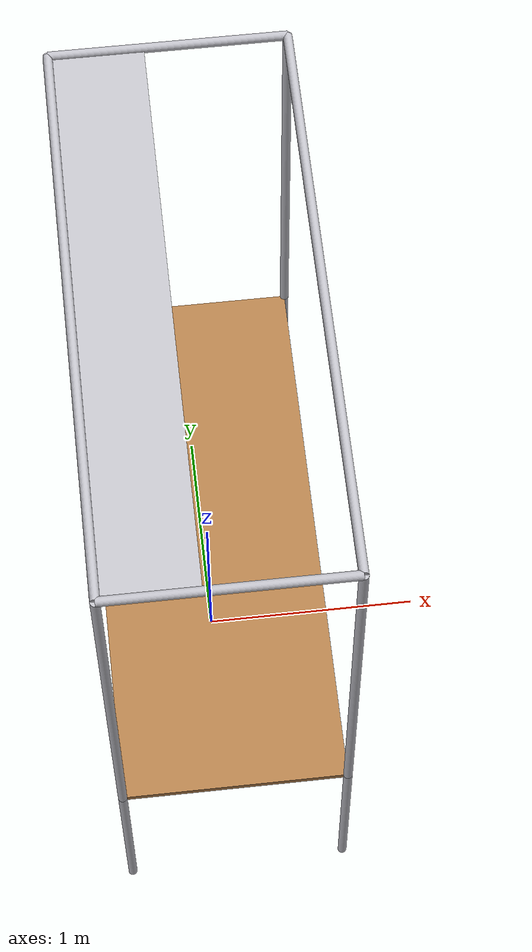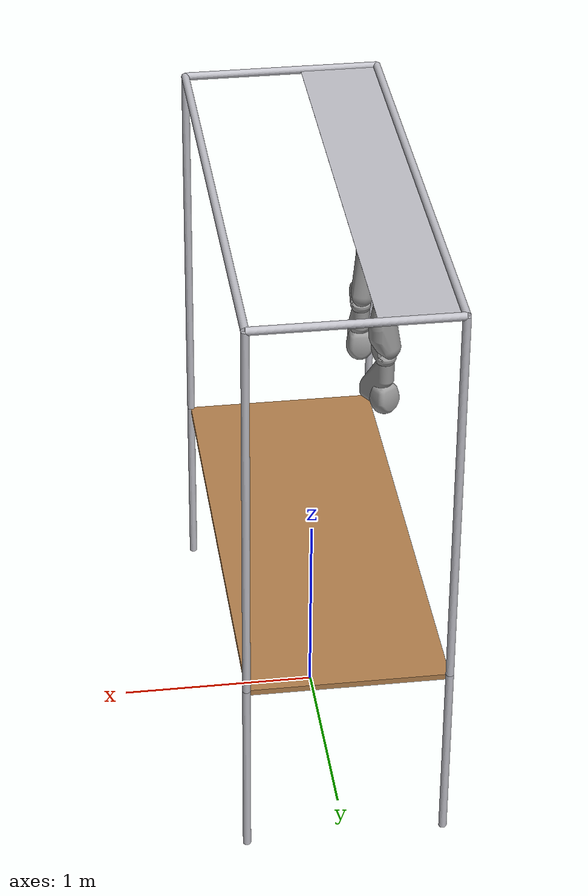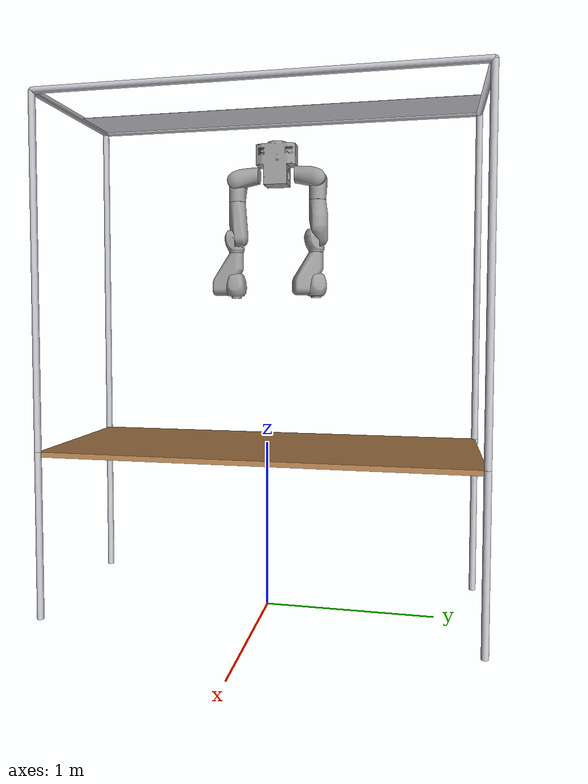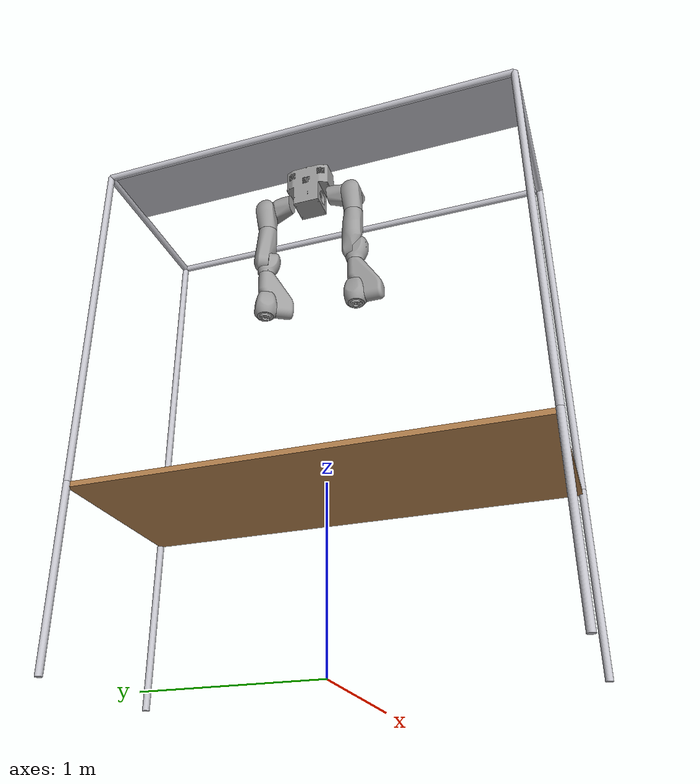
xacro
<?xml version="1.0"?>
<robot xmlns:xacro="http://ros.org/wiki/xacro" name="repair_full">

    <xacro:include filename="$(find repair_urdf)/urdf/conversions.urdf.xacro" />
    <xacro:include filename="$(find repair_urdf)/urdf/materials.urdf.xacro" />

    <xacro:include filename="$(find repair_urdf)/urdf/repair_arm_macro.urdf.xacro" />
    <xacro:include filename="$(find repair_urdf)/urdf/repair_torso_macro.urdf.xacro"/>
    <xacro:include filename="$(find repair_urdf)/urdf/repair_cage_macro.urdf.xacro"/>

    <xacro:include filename="$(find repair_urdf)/urdf/kinematics_properties.urdf.xacro" />
    <xacro:include filename="$(find repair_urdf)/urdf/inertial_properties.urdf.xacro" />
    <xacro:include filename="$(find repair_urdf)/urdf/limits.urdf.xacro" />

    <xacro:include filename="$(find repair_urdf)/urdf/gazebo/xbot.gazebo.xacro" />

    <link name="world"/>

    <xacro:repair_cage parent="world">
    </xacro:repair_cage>

    <xacro:repair_torso parent="sliding_guide_link">
    <origin xyz="${Torso_Ox} ${Torso_Oy} ${Torso_Oz}"
            rpy="${Torso_roll} ${Torso_pitch} ${Torso_yaw}" />
    </xacro:repair_torso>

    <xacro:repair_arm id="2"  rot="1"  parent="torso_1">
      <origin xyz="${Shoulder_1_Ox} ${Shoulder_1_Oy} ${Shoulder_1_Oz}"
              rpy="${Shoulder_1_roll} ${Shoulder_1_pitch} ${Shoulder_1_yaw}" />
    </xacro:repair_arm>

    <xacro:repair_arm id="1"  rot="-1"  parent="torso_1">
        <origin xyz="${Shoulder_1_Ox} ${-Shoulder_1_Oy} ${Shoulder_1_Oz}"
                rpy="${-Shoulder_1_roll} ${Shoulder_1_pitch} ${Shoulder_1_yaw}" />
      </xacro:repair_arm>

</robot>

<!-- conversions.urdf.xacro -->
<robot xmlns:xacro="http://ros.org/wiki/xacro">

<xacro:property name="mmTom" value="0.001" />
<xacro:property name="mm2Tom2" value="${0.001*0.001}" />
<xacro:property name="tonsToKg" value="1000.0" />

<xacro:property name="PI" value="3.14159265359" />
<xacro:property name="PI_2" value="1.57079632679" />

<xacro:property name="toRad" value="${PI/180.0}" />
<xacro:property name="toDeg" value="${180.0/PI}" />

</robot>

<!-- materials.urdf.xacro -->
<robot xmlns:xacro="http://ros.org/wiki/xacro">

<material name="grey">
  <color rgba="0.5 0.5 0.5 1"/>
</material>

<material name="dark_grey">
  <color rgba="0.3 0.3 0.3 1"/>
</material>

<material name="red">
  <color rgba="1.0 0.0 0.0 1"/>
</material>

<material name="green">
  <color rgba="0.0 1.0 0.0 1"/>
</material>

<material name="blue">
  <color rgba="0.13333333333333333 0.25882352941176473 0.7803921568627451 1.0" />
</material>

<material name="darkblue">
    <color rgba="0.0 0.3 0.9 1"/>
</material>

<material name="darkred">
    <color rgba="0.55 0.0 0.0 1"/>
</material>

<material name="dark">
    <color rgba="0.6 0.6 0.6 1"/>
</material>

</robot>

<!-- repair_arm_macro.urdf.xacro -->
<robot xmlns:xacro="http://ros.org/wiki/xacro">

<!-- macro for generating the urdf associated with a single arm of the RePair platform -->
<!-- id: specifies the id of the arm (e.g. 0 for left arm and 1 for right) -->
<!-- base_link: name of base link a the single arm -->
<!-- is_sliding_wrist: whether to add a sliding joint along the wrist second d.o.f.
    (true -> yes), everything else -> no. This is used to generate the URDF for the optimization.  -->
<!-- gen_coll: whether to add the approximate collision  model of the platform -->
<!-- use_updated_wrist: visual parameter. if true, we load the latest meshes (which are adapted to the
results of the optimization), otherwise we go with the old ones (generated for a spherical wrist) -->

    <xacro:macro name="repair_arm" params="id rot parent *origin">

        <xacro:property name="limit_index" value="0" />

        <xacro:if value="${rot == -1}">
            <xacro:property name="limit_index" value="1" />
        </xacro:if>

        <link name="arm_${id}_1">
            <inertial>
                <origin xyz="${Shoulder_1_x} ${rot*Shoulder_1_y} ${Shoulder_1_z}" />
                <mass value="${Shoulder_1_mass}" />
                <inertia ixx="${Shoulder_1_xx}" ixy="${rot*Shoulder_1_xy}" ixz="${Shoulder_1_xz}"
                    iyy="${Shoulder_1_yy}" iyz="${rot*Shoulder_1_yz}" izz="${Shoulder_1_zz}" />
                </inertial>

            <visual>
                <geometry>
                    <mesh filename="package://repair_urdf/meshes/mesh_sh-pitch.stl" scale="0.001 ${rot*0.001} 0.001"/>
                </geometry>
                <material name="dark"/>
            </visual>

            <collision>
                <geometry>
                    <mesh filename="package://repair_urdf/meshes/simplified/mesh_sh-pitch.stl" scale="0.001 ${rot*0.001} 0.001"/>
                </geometry>
            </collision>
        </link>

        <link name="arm_${id}_2">
            <inertial>
                <origin xyz="${Shoulder_2_x} ${rot*Shoulder_2_y} ${Shoulder_2_z}" />
                <mass value="${Shoulder_2_mass}" />
                <inertia ixx="${Shoulder_2_xx}" ixy="${rot*Shoulder_2_xy}" ixz="${Shoulder_2_xz}"
                    iyy="${Shoulder_2_yy}" iyz="${rot*Shoulder_2_yz}" izz="${Shoulder_2_zz}" />
                </inertial>

            <visual>
                <geometry>
                    <mesh filename="package://repair_urdf/meshes/mesh_sh-roll.stl" scale="0.001 ${rot*0.001} 0.001"/>
                </geometry>
                <material name="dark"/>
            </visual>

            <collision>
                <geometry>
                    <mesh filename="package://repair_urdf/meshes/simplified/mesh_sh-roll.stl" scale="0.001 ${rot*0.001} 0.001"/>
                </geometry>
            </collision>
        </link>

        <link name="arm_${id}_3">
            <inertial>
                <origin xyz="${Shoulder_3_x} ${rot*Shoulder_3_y} ${Shoulder_3_z}" />
                <mass value="${Shoulder_3_mass}" />
                <inertia ixx="${Shoulder_3_xx}" ixy="${rot*Shoulder_3_xy}" ixz="${Shoulder_3_xz}"
                    iyy="${Shoulder_3_yy}" iyz="${rot*Shoulder_3_yz}" izz="${Shoulder_3_zz}" />
                </inertial>

            <visual>
                <geometry>
                    <mesh filename="package://repair_urdf/meshes/mesh_sh-yaw.stl" scale="0.001 ${rot*0.001} 0.001"/>
                </geometry>
                <material name="dark"/>
            </visual>

            <collision>
                <geometry>
                    <mesh filename="package://repair_urdf/meshes/simplified/mesh_sh-yaw.stl" scale="0.001 ${rot*0.001} 0.001"/>
                </geometry>
            </collision>
        </link>

        <link name="arm_${id}_4">
            <inertial>
                <origin xyz="${Elbow_x} ${rot*Elbow_y} ${Elbow_z}" />
                <mass value="${Elbow_mass}" />
                <inertia ixx="${Elbow_xx}" ixy="${rot*Elbow_xy}" ixz="${Elbow_xz}"
                    iyy="${Elbow_yy}" iyz="${rot*Elbow_yz}" izz="${Elbow_zz}" />
                </inertial>

            <visual>
                <geometry>
                    <mesh filename="package://repair_urdf/meshes/mesh_elbow.stl" scale="0.001 ${rot*0.001} 0.001"/>
                </geometry>
                <material name="dark"/>
            </visual>

            <collision>
                <geometry>
                    <mesh filename="package://repair_urdf/meshes/simplified/mesh_elbow.stl" scale="0.001 ${rot*0.001} 0.001"/>
                </geometry>
            </collision>
        </link>

        <link name="arm_${id}_5">
            <inertial>
                <origin xyz="${Forearm_x} ${rot*Forearm_y} ${Forearm_z}" />
                <mass value="${Forearm_mass}" />
                <inertia ixx="${Forearm_xx}" ixy="${rot*Forearm_xy}" ixz="${Forearm_xz}"
                    iyy="${Forearm_yy}" iyz="${rot*Forearm_yz}" izz="${Forearm_zz}" />
                </inertial>

            <visual>
                <geometry>
                    <mesh filename="package://repair_urdf/meshes/mesh_forearm-yaw.stl" scale="0.001 ${rot*0.001} 0.001"/>
                </geometry>
                <material name="dark"/>
            </visual>

            <collision>
                <geometry>
                    <mesh filename="package://repair_urdf/meshes/simplified/mesh_forearm-yaw.stl" scale="0.001 ${rot*0.001} 0.001"/>
                </geometry>
            </collision>
        </link>

        <link name="arm_${id}_6">
            <inertial>
                <origin xyz="${Wrist_1_x} ${rot*Wrist_1_y} ${Wrist_1_z}" />
                <mass value="${Wrist_1_mass}" />
                <inertia ixx="${Wrist_1_xx}" ixy="${rot*Wrist_1_xy}" ixz="${Wrist_1_xz}"
                    iyy="${Wrist_1_yy}" iyz="${rot*Wrist_1_yz}" izz="${Wrist_1_zz}" />
                </inertial>

            <visual>
                <geometry>
                    <mesh filename="package://repair_urdf/meshes/mesh_wrist-pitch.stl" scale="0.001 ${rot*0.001} 0.001"/>
                </geometry>
                <material name="dark"/>
            </visual>

            <collision>
                <geometry>
                    <mesh filename="package://repair_urdf/meshes/simplified/mesh_wrist-pitch.stl" scale="0.001 ${rot*0.001} 0.001"/>
                </geometry>
            </collision>
        </link>

        <link name="arm_${id}_7">
            <inertial>
                <origin xyz="${Wrist_2_x} ${rot*Wrist_2_y} ${Wrist_2_z}" />
                <mass value="${Wrist_2_mass}" />
                <inertia ixx="${Wrist_2_xx}" ixy="${rot*Wrist_2_xy}" ixz="${Wrist_2_xz}"
                    iyy="${Wrist_2_yy}" iyz="${rot*Wrist_2_yz}" izz="${Wrist_2_zz}" />
            </inertial>

            <visual>
                <geometry>
                    <mesh filename="package://repair_urdf/meshes/mesh_wrist-roll.stl" scale="0.001 ${rot*0.001} 0.001"/>
                </geometry>
                <material name="dark"/>
            </visual>

            <collision>
                <geometry>
                    <mesh filename="package://repair_urdf/meshes/simplified/mesh_wrist-roll.stl" scale="0.001 ${rot*0.001} 0.001"/>
                </geometry>
            </collision>
        </link>

        <link name="arm_${id}_tcp">
            <inertial>
                <origin xyz="0.0 0.05 0.1" />
                <mass value="0.5" />
                <inertia ixx="0.001" ixy="0.0" ixz="0.0" iyy="0.001" iyz="0.0" izz="0.001" />
            </inertial>
        </link>

        <link name="arm_${id}_tcp_joi">
            <inertial>
		<origin xyz="0.0 0.05 0.1" />
                <mass value="0.5" />
                <inertia ixx="0.001" ixy="0.0" ixz="0.0" iyy="0.001" iyz="0.0" izz="0.001" />
            </inertial>
        </link>

        <!-- JOINTS -->

        <!-- shoulder pitch -->
        <joint name="j_arm_${id}_1" type="revolute">
            <parent link="${parent}" />
            <child link="arm_${id}_1" />
            <axis xyz="0 0 1" />
            <xacro:insert_block name="origin" />
            <limit lower="${j_arm_1_lower[limit_index]}" upper="${j_arm_1_upper[limit_index]}"
            effort="${j_arm_1_torque[0]}" velocity="${j_arm_1_velocity[0]}" />
        </joint>
        <!-- shoulder pitch -->

        <!-- shoulder yaw -->
        <joint name="j_arm_${id}_2" type="revolute">
            <parent link="arm_${id}_1" />
            <child link="arm_${id}_2" />
            <origin xyz="${Shoulder_2_Ox} ${rot*Shoulder_2_Oy} ${Shoulder_2_Oz}"
            rpy="${rot*Shoulder_2_roll} ${Shoulder_2_pitch} ${Shoulder_2_yaw}" />
            <axis xyz="0 0 1" />
            <limit lower="${j_arm_2_lower[limit_index]}" upper="${j_arm_2_upper[limit_index]}"
            effort="${j_arm_2_torque[0]}" velocity="${j_arm_2_velocity[0]}" />
        </joint>
        <!-- shoulder yaw -->

        <!-- shoulder yaw -->
        <joint name="j_arm_${id}_3" type="revolute">
            <parent link="arm_${id}_2" />
            <child link="arm_${id}_3" />
            <origin xyz="${Shoulder_3_Ox} ${rot*Shoulder_3_Oy} ${Shoulder_3_Oz}"
            rpy="${rot*Shoulder_3_roll} ${Shoulder_3_pitch} ${Shoulder_3_yaw}" />
            <axis xyz="0 0 -1" />
            <limit lower="${j_arm_3_lower[limit_index]}" upper="${j_arm_3_upper[limit_index]}"
            effort="${j_arm_3_torque[0]}" velocity="${j_arm_3_velocity[0]}" />
        </joint>
        <!-- shoulder yaw -->

        <!-- elbow -->
        <joint name="j_arm_${id}_4" type="revolute">
            <parent link="arm_${id}_3" />
            <child link="arm_${id}_4" />
            <origin xyz="${Elbow_1_Ox} ${rot*Elbow_1_Oy} ${Elbow_1_Oz}"
            rpy="${rot*Elbow_1_roll} ${Elbow_1_pitch} ${Elbow_1_yaw}" />
            <axis xyz="0 0 1" />
            <limit lower="${j_arm_4_lower[limit_index]}" upper="${j_arm_4_upper[limit_index]}"
            effort="${j_arm_4_torque[0]}" velocity="${j_arm_4_velocity[0]}" />
        </joint>
        <!-- elbow -->

        <!-- forearm yaw -->
        <joint name="j_arm_${id}_5" type="revolute">
            <parent link="arm_${id}_4" />
            <child link="arm_${id}_5" />
            <origin xyz="${Forearm_1_Ox} ${rot*Forearm_1_Oy} ${Forearm_1_Oz}"
            rpy="${rot*Forearm_1_roll} ${Forearm_1_pitch} ${Forearm_1_yaw}" />
            <axis xyz="0 0 -1" />
            <limit lower="${j_arm_5_lower[limit_index]}" upper="${j_arm_5_upper[limit_index]}"
            effort="${j_arm_5_torque[0]}" velocity="${j_arm_5_velocity[0]}" />
        </joint>
        <!-- forearm yaw -->

        <!-- wrist pitch-->
        <joint name="j_arm_${id}_6" type="revolute">
            <parent link="arm_${id}_5" />
            <child link="arm_${id}_6" />
            <origin xyz="${Wrist_1_Ox} ${rot*Wrist_1_Oy} ${Wrist_1_Oz}"
            rpy="${rot*Wrist_1_roll} ${Wrist_1_pitch} ${Wrist_1_yaw}" />
            <axis xyz="0 0 1" />
            <limit lower="${j_arm_6_lower[limit_index]}" upper="${j_arm_6_upper[limit_index]}"
            effort="${j_arm_6_torque[0]}" velocity="${j_arm_6_velocity[0]}" />
        </joint>
        <!-- wrist pitch-->

        <!-- wrist roll-->
        <joint name="j_arm_${id}_7" type="revolute">
            <parent link="arm_${id}_6" />
            <child link="arm_${id}_7" />
            <origin xyz="${Wrist_2_Ox} ${rot*Wrist_2_Oy} ${Wrist_2_Oz}"
            rpy="${rot*Wrist_2_roll} ${Wrist_2_pitch} ${Wrist_2_yaw}" />
            <axis xyz="0 0 1" />
            <limit lower="${j_arm_7_lower[limit_index]}" upper="${j_arm_7_upper[limit_index]}"
            effort="${j_arm_7_torque[0]}" velocity="${j_arm_7_velocity[0]}" />
        </joint>
        <!-- /wrist roll-->

        <!-- virtual tip-->
        <joint name="j_tcp_${id}" type="fixed">
            <parent link="arm_${id}_7" />
            <child link="arm_${id}_tcp" />
            <origin xyz="${No_end_ft_Ox} ${rot*No_end_ft_Oy} ${No_end_ft_Oz}"
            rpy="${rot*No_end_ft_roll} ${No_end_ft_pitch} ${No_end_ft_yaw}" />
        </joint>
        <!-- virtual tip-->

	<!-- virtual tip-->
        <joint name="j_tcp_${id}_joi" type="fixed">
            <parent link="arm_${id}_tcp" />
            <child link="arm_${id}_tcp_joi" />
            <origin xyz="${No_end_ft_Ox} ${rot*No_end_ft_Oy} ${No_end_ft_Oz}"
            rpy="3.14 0 0" />
        </joint>
        <!-- virtual tip-->

    </xacro:macro>

</robot>

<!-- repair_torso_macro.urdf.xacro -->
<robot xmlns:xacro="http://ros.org/wiki/xacro">

    <xacro:macro name="repair_torso" params="parent *origin">

        <joint name="j_sliding_guide" type="prismatic">
            <parent link="${parent}" />
            <origin xyz="0 0 0" rpy="0 0 0"/>
            <child link="dummy_prismatic_link"/>
            <axis xyz="0 0 -1"/>
            <limit lower="${j_prismatic_lower[0]/2}" upper= "${j_prismatic_upper[0]/2}" effort="${j_prismatic_torque[0]}" velocity="${j_prismatic_velocity[0]}"/>
        </joint>

        <link name="dummy_prismatic_link">

        </link>

        <link name="torso_1">
            <inertial>
                <origin xyz="${Torso_x} ${Torso_y} ${Torso_z}" />
                <mass value="${Torso_mass}" />
                <inertia ixx="${Torso_xx}" ixy="${Torso_xy}" ixz="${Torso_xz}"
                    iyy="${Torso_yy}" iyz="${Torso_yz}" izz="${Torso_zz}" />
            </inertial>
            <visual>
                <geometry>
                    <mesh filename="package://repair_urdf/meshes/mesh_torso-yaw.stl" scale="0.001 0.001 0.001"/>
                </geometry>
                <material name="dark"/>
            </visual>

            <collision>
                <geometry>
                    <mesh filename="package://repair_urdf/meshes/simplified/mesh_torso-yaw.stl" scale="0.001 0.001 0.001"/>
                </geometry>
            </collision>
        </link>

        <!-- torso -->
        <joint name="j_torso_1" type="revolute">
            <parent link="dummy_prismatic_link" />
            <child link="torso_1" />
            <axis xyz="0 0 1" />
            <xacro:insert_block name="origin" />
            <limit lower="${j_torso_lower[0]}" upper="${j_torso_upper[0]}"
            effort="${j_torso_torque[0]}" velocity="${j_torso_velocity[0]}" />
        </joint>
        <!-- torso  -->

    </xacro:macro>

</robot>

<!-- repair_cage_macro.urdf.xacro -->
<robot xmlns:xacro="http://ros.org/wiki/xacro">

  <xacro:macro name="repair_cage" params="parent">

  <link name="table_top_link">
    <visual>
      <origin xyz="${Table_x} ${Table_y} ${Table_z+table_height-table_top_thickness/2}" />
      <geometry>
        <box size="${Cage_x} ${Cage_y} ${table_top_thickness}" />
      </geometry>
      <material name="wood" />
    </visual>
  </link>

  <joint name="table_top_link_joint" type="fixed" >
    <parent link="${parent}" />
    <child link="table_top_link" />
  </joint>

  <joint name="leg1_joint" type="fixed" >
    <parent link="table_top_link" />
    <origin xyz="${Table_x+Cage_x/2} ${Table_y+Cage_y/2} ${Table_z+table_height}" rpy="0 0 0" />
    <child link="leg1_link" />
  </joint>
  <link name="leg1_link">
    <visual>
      <origin xyz="0.0 0.0 ${-table_height/2}" rpy="0 0 0" />
      <geometry>
        <cylinder radius="${Cage_leg_radius}" length="${table_height}" />
      </geometry>
    <material name="silver_gray" />
    </visual>
    <collision>
      <origin xyz="0.0 0.0 ${-table_height/2}" rpy="0.0 0.0 0.0" />
      <geometry>
        <cylinder radius="${Cage_leg_radius}" length="${table_height}" />
      </geometry>
    </collision>
  </link>
  <joint name="vbar1_joint" type="fixed" >
    <parent link="leg1_link" />
    <origin xyz="0 0 ${Cage_z/2}" rpy="0 0 0" />
    <child link="vbar1_link" />
  </joint>
  <link name="vbar1_link">
    <visual>
      <origin xyz="0.0 0.0 0" rpy="0 0 0" />
      <geometry>
        <cylinder radius="${Cage_leg_radius}" length="${Cage_z}" />
      </geometry>
    <material name="silver_gray" />
    </visual>
    <collision>
      <origin xyz="0.0 0.0 0" rpy="0.0 0.0 0.0" />
      <geometry>
        <cylinder radius="${Cage_leg_radius}" length="${Cage_z}" />
      </geometry>
    </collision>
  </link>

  <joint name="leg2_joint" type="fixed" >
    <parent link="table_top_link" />
    <origin xyz="${Table_x-Cage_x/2} ${Table_y+Cage_y/2} ${Table_z+table_height}" rpy="0 0 0" />
    <child link="leg2_link" />
  </joint>
  <link name="leg2_link">
    <visual>
      <origin xyz="0.0 0.0 ${-table_height/2}" rpy="0 0 0" />
      <geometry>
        <cylinder radius="${Cage_leg_radius}" length="${table_height}" />
      </geometry>
      <material name="silver_gray" />

    </visual>
    <collision>
      <origin xyz="0.0 0.0 ${-table_height/2}" rpy="0.0 0.0 0.0" />
      <geometry>
        <cylinder radius="${Cage_leg_radius}" length="${table_height}" />
      </geometry>
    </collision>
  </link>
  <joint name="vbar2_joint" type="fixed" >
    <parent link="leg2_link" />
    <origin xyz="0 0 ${Cage_z/2}" rpy="0 0 0" />
    <child link="vbar2_link" />
  </joint>
  <link name="vbar2_link">
    <visual>
      <origin xyz="0.0 0.0 0" rpy="0 0 0" />
      <geometry>
        <cylinder radius="${Cage_leg_radius}" length="${Cage_z}" />
      </geometry>
    <material name="silver_gray" />
    </visual>
    <collision>
      <origin xyz="0.0 0.0 0" rpy="0.0 0.0 0.0" />
      <geometry>
        <cylinder radius="${Cage_leg_radius}" length="${Cage_z}" />
      </geometry>
    </collision>
  </link>

  <joint name="leg3_joint" type="fixed" >
    <parent link="table_top_link" />
    <origin xyz="${Table_x+Cage_x/2} ${Table_y-Cage_y/2} ${Table_z+table_height}" rpy="0 0 0" />
    <child link="leg3_link" />
  </joint>
  <link name="leg3_link">
    <visual>
      <origin xyz="0.0 0.0 ${-table_height/2}" rpy="0 0 0" />
      <geometry>
        <cylinder radius="${Cage_leg_radius}" length="${table_height}" />
      </geometry>
      <material name="silver_gray" />

    </visual>
    <collision>
      <origin xyz="0.0 0.0 ${-table_height/2}" rpy="0.0 0.0 0.0" />
      <geometry>
        <cylinder radius="${Cage_leg_radius}" length="${table_height}" />
      </geometry>
    </collision>
  </link>
  <joint name="vbar3_joint" type="fixed" >
    <parent link="leg3_link" />
    <origin xyz="0 0 ${Cage_z/2}" rpy="0 0 0" />
    <child link="vbar3_link" />
  </joint>
  <link name="vbar3_link">
    <visual>
      <origin xyz="0.0 0.0 0" rpy="0 0 0" />
      <geometry>
        <cylinder radius="${Cage_leg_radius}" length="${Cage_z}" />
      </geometry>
    <material name="silver_gray" />
    </visual>
    <collision>
      <origin xyz="0.0 0.0 0" rpy="0.0 0.0 0.0" />
      <geometry>
        <cylinder radius="${Cage_leg_radius}" length="${Cage_z}" />
      </geometry>
    </collision>
  </link>

  <joint name="leg4_joint" type="fixed" >
    <parent link="table_top_link" />
    <origin xyz="${Table_x-Cage_x/2} ${Table_y-Cage_y/2} ${Table_z+table_height}" rpy="0 0 0" />
    <child link="leg4_link" />
  </joint>
  <link name="leg4_link">
    <visual>
      <origin xyz="0.0 0.0 ${-table_height/2}" rpy="0 0 0" />
      <geometry>
        <cylinder radius="${Cage_leg_radius}" length="${table_height}" />
      </geometry>
      <material name="silver_gray" />

    </visual>
    <collision>
      <origin xyz="0.0 0.0 ${-table_height/2}" rpy="0.0 0.0 0.0" />
      <geometry>
        <cylinder radius="${Cage_leg_radius}" length="${table_height}" />
      </geometry>
    </collision>
  </link>
  <joint name="vbar4_joint" type="fixed" >
    <parent link="leg4_link" />
    <origin xyz="0 0 ${Cage_z/2}" rpy="0 0 0" />
    <child link="vbar4_link" />
  </joint>
  <link name="vbar4_link">
    <visual>
      <origin xyz="0.0 0.0 0" rpy="0 0 0" />
      <geometry>
        <cylinder radius="${Cage_leg_radius}" length="${Cage_z}" />
      </geometry>
    <material name="silver_gray" />
    </visual>
    <collision>
      <origin xyz="0.0 0.0 0" rpy="0.0 0.0 0.0" />
      <geometry>
        <cylinder radius="${Cage_leg_radius}" length="${Cage_z}" />
      </geometry>
    </collision>
  </link>

  <joint name="obar1_joint" type="fixed" >
    <parent link="vbar1_link" />
    <origin xyz="-${Cage_x/2} 0 ${Cage_z/2}" rpy="0 -${PI_2} 0" />
    <child link="obar1_link" />
  </joint>
  <link name="obar1_link">
    <visual>
      <origin xyz="0.0 0.0 0" rpy="0 0 0" />
      <geometry>
        <cylinder radius="${Cage_leg_radius}" length="${Cage_x}" />
      </geometry>
    <material name="silver_gray" />
    </visual>
    <collision>
      <origin xyz="0.0 0.0 0" rpy="0.0 0.0 0.0" />
      <geometry>
        <cylinder radius="${Cage_leg_radius}" length="${Cage_x}" />
      </geometry>
    </collision>
  </link>

  <joint name="obar2_joint" type="fixed" >
    <parent link="vbar3_link" />
    <origin xyz="-${Cage_x/2} 0 ${Cage_z/2}" rpy="0 -${PI_2} 0" />
    <child link="obar2_link" />
  </joint>
  <link name="obar2_link">
    <visual>
      <origin xyz="0.0 0.0 0" rpy="0 0 0" />
      <geometry>
        <cylinder radius="${Cage_leg_radius}" length="${Cage_x}" />
      </geometry>
    <material name="silver_gray" />
    </visual>
    <collision>
      <origin xyz="0.0 0.0 0" rpy="0.0 0.0 0.0" />
      <geometry>
        <cylinder radius="${Cage_leg_radius}" length="${Cage_x}" />
      </geometry>
    </collision>
  </link>

  <joint name="obar3_joint" type="fixed" >
    <parent link="vbar3_link" />
    <origin xyz="0 ${Cage_y/2} ${Cage_z/2}" rpy="-${PI_2} 0 0" />
    <child link="obar3_link" />
  </joint>
  <link name="obar3_link">
    <visual>
      <origin xyz="0.0 0.0 0" rpy="0 0 0" />
      <geometry>
        <cylinder radius="${Cage_leg_radius}" length="${Cage_y}" />
      </geometry>
    <material name="silver_gray" />
    </visual>
    <collision>
      <origin xyz="0.0 0.0 0" rpy="0.0 0.0 0.0" />
      <geometry>
        <cylinder radius="${Cage_leg_radius}" length="${Cage_y}" />
      </geometry>
    </collision>
  </link>

  <joint name="obar4_joint" type="fixed" >
    <parent link="vbar4_link" />
    <origin xyz="0 ${Cage_y/2} ${Cage_z/2}" rpy="-${PI_2} 0 0" />
    <child link="obar4_link" />
  </joint>
  <link name="obar4_link">
    <!-- dummy intertia to make Gazebo urdf2sdf converter work -->
    <visual>
      <origin xyz="0.0 0.0 0" rpy="0 0 0" />
      <geometry>
        <cylinder radius="${Cage_leg_radius}" length="${Cage_y}" />
      </geometry>
    <material name="silver_gray" />
    </visual>
    <collision>
      <origin xyz="0.0 0.0 0" rpy="0.0 0.0 0.0" />
      <geometry>
        <cylinder radius="${Cage_leg_radius}" length="${Cage_y}" />
      </geometry>
    </collision>
  </link>

  <joint name="sliding_guide_joint" type="fixed" >
    <parent link="obar2_link" />
    <origin xyz="${Cage_sliding_guide_z} ${Cage_y/2 + Cage_sliding_guide_y} ${Cage_x/2 - Cage_sliding_guide_width/2 + Cage_sliding_guide_x}" rpy="-${PI_2} 0 0" />
    <child link="sliding_guide_link" />
  </joint>
  <link name="sliding_guide_link">
    <visual>
      <origin xyz="0.0 0.0 0" rpy="0 0 0" />
      <geometry>
        <box size="0.001 ${Cage_sliding_guide_width} ${Cage_y}" />
      </geometry>
    <material name="silver_gray" />
    </visual>
    <collision>
      <origin xyz="0.0 0.0 0" rpy="0.0 0.0 0.0" />
      <geometry>
        <cylinder radius="${Cage_leg_radius}" length="${Cage_y}" />
      </geometry>
    </collision>
  </link>

  <joint name="working_surface_joint" type="fixed" >
    <parent link="sliding_guide_link" />
    <origin xyz="-${Cage_z} 0 0" rpy="0.0 -${PI_2} ${PI}" />
    <child link="working_surface_link" />
  </joint>

  <link name="working_surface_link">
    <!-- Huge inertia (does not matter, is fixed to the world)-->
      <inertial>
          <mass value="1000" />
          <origin xyz="0 0 0" />
          <inertia ixx="0" ixy="0"  ixz="0"
                  iyy="0" iyz="0"
                  izz="0" />
      </inertial>

  </link>

  </xacro:macro>

</robot>

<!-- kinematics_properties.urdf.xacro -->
<robot  xmlns:xacro="http://ros.org/wiki/xacro">

    <xacro:property name="Table_x" value="0.0" />
    <xacro:property name="Table_y" value="0.0" />
    <xacro:property name="Table_z" value="0.0" /> <!-- w.r.t world  -->
    <xacro:property name="table_top_thickness" value="0.03"/> <!-- w.r.t. top origin of table to down  -->
    <xacro:property name="table_height" value="0.983"/> <!-- w.r.t. working surface of the table  -->

    <xacro:property name="Cage_x" value="1.0" />
    <xacro:property name="Cage_y" value="2.5" />
    <xacro:property name="Cage_z" value="2.05"/> <!-- w.r.t table  -->
    <xacro:property name="Cage_leg_radius" value="0.02" />

    <xacro:property name="Cage_sliding_guide_x" value="0.0"/> <!-- w.r.t world  -->
    <xacro:property name="Cage_sliding_guide_y" value="0.0"/> <!-- w.r.t world  -->
    <xacro:property name="Cage_sliding_guide_z" value="0.0"/> <!-- w.r.t world  -->

    <xacro:property name="Cage_sliding_guide_width" value="0.4"/>

    <xacro:property name="Torso_Ox" value=" -0.13 "/>
    <xacro:property name="Torso_Oy" value=" 0.0 "/>
    <xacro:property name="Torso_Oz" value=" 0.0 "/>
    <xacro:property name="Torso_roll" value=" ${PI/2} "/>
    <xacro:property name="Torso_pitch" value=" 0.0 "/>
    <xacro:property name="Torso_yaw" value=" ${PI/2}"/>

    <!-- Origin -->
    <xacro:property name="Shoulder_1_Ox" value=" 0.0 "/>
    <xacro:property name="Shoulder_1_Oy" value="  -0.135150"/>
    <xacro:property name="Shoulder_1_Oz" value=" -0.242150 "/>
    <xacro:property name="Shoulder_1_roll" value=" ${PI/2} "/> <!-- ${PI/2}  -->
    <xacro:property name="Shoulder_1_pitch" value=" 0.0 "/>
    <xacro:property name="Shoulder_1_yaw" value=" 0.0 "/>

    <!-- Origin -->
    <xacro:property name="Shoulder_2_Ox" value=" -0.06"/>
    <xacro:property name="Shoulder_2_Oy" value=" -0.03 "/>
    <xacro:property name="Shoulder_2_Oz" value=" 0.1255 "/>
    <xacro:property name="Shoulder_2_roll" value=" 0.0"/>
    <xacro:property name="Shoulder_2_pitch" value=" ${-PI/2} "/>
    <xacro:property name="Shoulder_2_yaw" value=" 0.0 "/>

    <!-- Origin -->
    <xacro:property name="Shoulder_3_Ox" value=" 0.0 "/>
    <xacro:property name="Shoulder_3_Oy" value=" -0.073 "/>
    <xacro:property name="Shoulder_3_Oz" value=" -0.06015 "/>
    <xacro:property name="Shoulder_3_roll" value=" ${-PI/2}"/>
    <xacro:property name="Shoulder_3_pitch" value=" ${PI/2} "/>
    <xacro:property name="Shoulder_3_yaw" value=" 0.0 "/>

    <!-- Origin -->
    <xacro:property name="Elbow_1_Ox" value=" 0.0225 "/>
    <xacro:property name="Elbow_1_Oy" value=" -0.05015 "/>
    <xacro:property name="Elbow_1_Oz" value=" -0.292150 "/>
    <xacro:property name="Elbow_1_roll" value=" ${PI/2} "/>
    <xacro:property name="Elbow_1_pitch" value=" 0.0 "/>
    <xacro:property name="Elbow_1_yaw" value=" 0.0 "/>

    <!-- Origin -->
    <xacro:property name="Forearm_1_Ox" value=" 0.0 "/>
    <xacro:property name="Forearm_1_Oy" value=" -0.0725 "/>
    <xacro:property name="Forearm_1_Oz" value=" -0.05015 "/>
    <xacro:property name="Forearm_1_roll" value=" ${-PI/2} "/>
    <xacro:property name="Forearm_1_pitch" value=" 0.0 "/>
    <xacro:property name="Forearm_1_yaw" value=" 0.0 "/>

    <!-- Origin -->
    <xacro:property name="Wrist_1_Ox" value=" 0.0 "/>
    <xacro:property name="Wrist_1_Oy" value=" -0.05 "/>
    <xacro:property name="Wrist_1_Oz" value=" -0.2475 "/>
    <xacro:property name="Wrist_1_roll" value=" ${-PI/2} "/>
    <xacro:property name="Wrist_1_pitch" value=" 0.0 "/>
    <xacro:property name="Wrist_1_yaw" value=" 0.0 "/>

    <!-- Origin -->
    <xacro:property name="Wrist_2_Ox" value=" 0.00 "/>
    <xacro:property name="Wrist_2_Oy" value=" 0.062877 "/>
    <xacro:property name="Wrist_2_Oz" value=" 0.050 "/>
    <xacro:property name="Wrist_2_roll" value=" ${-PI/2} "/>
    <xacro:property name="Wrist_2_pitch" value=" 0.3316123 "/>
    <xacro:property name="Wrist_2_yaw" value=" 0.0 "/>

    <!-- END-EFFECTORS-->
    <!-- Origin -->
    <xacro:property name="No_end_ft_Ox" value=" 0.0 "/>
    <xacro:property name="No_end_ft_Oy" value=" 0.0 "/>
    <xacro:property name="No_end_ft_Oz" value=" 0.0 "/>
    <xacro:property name="No_end_ft_roll" value=" 0.0 "/>
    <xacro:property name="No_end_ft_pitch" value=" 0.0 "/>
    <xacro:property name="No_end_ft_yaw" value=" 0.0 "/>

    </robot>

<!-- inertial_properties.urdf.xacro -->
<robot  xmlns:xacro="http://ros.org/wiki/xacro">

    <!-- General Data -->
    <xacro:property name="link_width" value=" 0.100000 "/>
    <xacro:property name="link_visual" value=" 0.050000 "/>
    <xacro:property name="motors_radius" value=" 0.050000 "/>
    <xacro:property name="motors_length" value=" 0.100000 "/>
    <xacro:property name="motors_weight" value=" 1.500000 "/>

    <!-- Center of Mass -->
    <xacro:property name="Base_x" value=" ${2.0548930e-01 *mmTom} "/>
    <xacro:property name="Base_y" value=" ${-6.2095789e-01*mmTom} "/>
    <xacro:property name="Base_z" value=" ${7.7352002e+01 *mmTom} "/>
    <!-- Inertia -->
    <xacro:property name="Base_xx" value=" ${1.0002127e+04 *mm2Tom2} "/>
    <xacro:property name="Base_yy" value=" ${1.0728527e+04 *mm2Tom2} "/>
    <xacro:property name="Base_zz" value=" ${6.2156037e+03 *mm2Tom2} "/>
    <xacro:property name="Base_xy" value=" ${4.1468014e+01 *mm2Tom2} "/>
    <xacro:property name="Base_xz" value=" ${-5.1253649e+01*mm2Tom2} "/>
    <xacro:property name="Base_yz" value=" ${-1.2700723e+02 *mm2Tom2}"/>
    <!-- Mass -->
    <xacro:property name="Base_mass" value=" 2.7764953 "/>

    <!-- SHOULDER PITCH -->
    <!-- Center of Mass -->
    <xacro:property name="Shoulder_1_x" value=" ${1.0200651e+01 *mmTom} "/>
    <xacro:property name="Shoulder_1_y" value=" ${-2.1560998e+01 *mmTom} "/>
    <xacro:property name="Shoulder_1_z" value=" ${9.8767025e+01 *mmTom} "/>
    <!-- Inertia -->
    <xacro:property name="Shoulder_1_xx" value=" ${7.1929157e+03 *mm2Tom2}"/>
    <xacro:property name="Shoulder_1_yy" value=" ${9.4711610e+03 *mm2Tom2} "/>
    <xacro:property name="Shoulder_1_zz" value=" ${5.8530904e+03 *mm2Tom2}"/>
    <xacro:property name="Shoulder_1_xy" value=" ${7.8543184e+01 *mm2Tom2} "/>
    <xacro:property name="Shoulder_1_xz" value=" ${-3.9791236e+02 *mm2Tom2}"/>
    <xacro:property name="Shoulder_1_yz" value=" ${1.2857051e+03 *mm2Tom2}"/>
    <!-- Mass -->
    <xacro:property name="Shoulder_1_mass" value="2.4405495"/>

    <!-- SHOULDER ROLL -->
    <!-- Center of Mass -->
    <xacro:property name="Shoulder_2_x" value=" ${4.5955243e-02*mmTom} "/>
    <xacro:property name="Shoulder_2_y" value=" ${-4.4957128e+01*mmTom} "/>
    <xacro:property name="Shoulder_2_z" value=" ${-3.0791013e+01 *mmTom} "/>
    <!-- Inertia -->
    <xacro:property name="Shoulder_2_xx" value=" ${2.7927572e+03 *mm2Tom2}"/>
    <xacro:property name="Shoulder_2_yy" value=" ${1.9288488e+03 *mm2Tom2} "/>
    <xacro:property name="Shoulder_2_zz" value=" ${2.6633366e+03 *mm2Tom2}"/>
    <xacro:property name="Shoulder_2_xy" value=" ${-2.0135067e+00 *mm2Tom2} "/>
    <xacro:property name="Shoulder_2_xz" value=" ${-1.3644218e+00 *mm2Tom2}"/>
    <xacro:property name="Shoulder_2_yz" value=" ${-6.6693438e+02 *mm2Tom2}"/>
    <!-- Mass -->
    <xacro:property name="Shoulder_2_mass" value="7.8724534e-01"/>

    <!-- SHOULDER YAW -->
    <!-- Center of Mass -->
    <xacro:property name="Shoulder_3_x" value=" ${5.0993150e+00 *mmTom} "/>
    <xacro:property name="Shoulder_3_y" value=" ${5.9986523e+00 *mmTom} "/>
    <xacro:property name="Shoulder_3_z" value=" ${-1.8011742e+02 *mmTom} "/>
    <!-- Inertia -->
    <xacro:property name="Shoulder_3_xx" value=" ${3.1298785e+04 *mm2Tom2}"/>
    <xacro:property name="Shoulder_3_yy" value=" ${3.1963501e+04 *mm2Tom2} "/>
    <xacro:property name="Shoulder_3_zz" value=" ${2.6332359e+03 *mm2Tom2}"/>
    <xacro:property name="Shoulder_3_xy" value=" ${-2.5158367e+02 *mm2Tom2} "/>
    <xacro:property name="Shoulder_3_xz" value=" ${2.3711270e+03 *mm2Tom2}"/>
    <xacro:property name="Shoulder_3_yz" value=" ${1.8728041e+03 *mm2Tom2}"/>
    <!-- Mass -->
    <xacro:property name="Shoulder_3_mass" value="2.8848438e+00"/>

    <!-- ELBOW -->
    <!-- Center of Mass -->
    <xacro:property name="Elbow_x" value=" ${3.3322750e-03 *mmTom} "/>
    <xacro:property name="Elbow_y" value=" ${-3.3289421e+01 *mmTom} "/>
    <xacro:property name="Elbow_z" value=" ${-2.3682302e+01 *mmTom} "/>
    <!-- Inertia -->
    <xacro:property name="Elbow_xx" value=" ${1.6198328e+03 *mm2Tom2} "/>
    <xacro:property name="Elbow_yy" value=" ${1.2266731e+03 *mm2Tom2} "/>
    <xacro:property name="Elbow_zz" value=" ${1.6081346e+03 *mm2Tom2} "/>
    <xacro:property name="Elbow_xy" value=" ${-1.2642724e+00 *mm2Tom2} "/>
    <xacro:property name="Elbow_xz" value=" ${-1.1734799e+00 *mm2Tom2} "/>
    <xacro:property name="Elbow_yz" value=" ${-3.9531701e+02 *mm2Tom2} "/>
    <!-- Mass -->
    <xacro:property name="Elbow_mass" value="6.0145584e-01"/>

    <!-- FOREARM -->
    <!-- Center of Mass -->
    <xacro:property name="Forearm_x" value=" ${2.0004978e+00 *mmTom} "/>
    <xacro:property name="Forearm_y" value=" ${-5.9178127e+01 *mmTom} "/>
    <xacro:property name="Forearm_z" value=" ${-1.5065406e+02 *mmTom} "/>
    <!-- Inertia -->
    <xacro:property name="Forearm_xx" value=" ${9.9022766e+03 *mm2Tom2}"/>
    <xacro:property name="Forearm_yy" value=" ${7.1759859e+03 *mm2Tom2}"/>
    <xacro:property name="Forearm_zz" value=" ${4.5802104e+03 *mm2Tom2}"/>
    <xacro:property name="Forearm_xy" value=" ${4.4500899e+01 *mm2Tom2} "/>
    <xacro:property name="Forearm_xz" value=" ${1.3354192e+01 *mm2Tom2} "/>
    <xacro:property name="Forearm_yz" value=" ${-3.1875374e+03 *mm2Tom2}"/>
    <!-- Mass -->
    <xacro:property name="Forearm_mass" value="1.3065556e+00"/>

    <!-- WRITST PITCH -->
    <!-- Center of Mass -->
    <xacro:property name="Wrist_1_x" value=" ${-5.8850122e+00 *mmTom} "/>
    <xacro:property name="Wrist_1_y" value=" ${-2.0700011e+01 *mmTom} "/>
    <xacro:property name="Wrist_1_z" value=" ${4.4606499e+01 *mmTom} "/>
    <!-- Inertia -->
    <xacro:property name="Wrist_1_xx" value=" ${3.3129474e+03 *mm2Tom2} "/>
    <xacro:property name="Wrist_1_yy" value=" ${2.9894708e+03 *mm2Tom2} "/>
    <xacro:property name="Wrist_1_zz" value=" ${3.6865610e+03 *mm2Tom2} "/>
    <xacro:property name="Wrist_1_xy" value=" ${-2.2801449e+02 *mm2Tom2} "/>
    <xacro:property name="Wrist_1_xz" value=" ${-1.1490187e+02 *mm2Tom2} "/>
    <xacro:property name="Wrist_1_yz" value=" ${-4.9067763e+01 *mm2Tom2} "/>
    <!-- Mass -->
    <xacro:property name="Wrist_1_mass" value="1.1552856e+00"/>

    <!-- WRITST ROLL -->
    <!-- Center of Mass -->
    <xacro:property name="Wrist_2_x" value=" ${0.0000000e+00 *mmTom} "/>
    <xacro:property name="Wrist_2_y" value=" ${-1.0491951e+00 *mmTom} "/>
    <xacro:property name="Wrist_2_z" value=" ${-1.0307299e+01 *mmTom} "/>
    <!-- Inertia -->
    <xacro:property name="Wrist_2_xx" value=" ${6.1479333e+01 *mm2Tom2} "/>
    <xacro:property name="Wrist_2_yy" value=" ${6.4247521e+01 *mm2Tom2} "/>
    <xacro:property name="Wrist_2_zz" value=" ${1.1879744e+02 *mm2Tom2} "/>
    <xacro:property name="Wrist_2_xy" value=" ${-7.4023399e-05 *mm2Tom2} "/>
    <xacro:property name="Wrist_2_xz" value=" ${0.0000000e+00 *mm2Tom2} "/>
    <xacro:property name="Wrist_2_yz" value=" ${4.7786448e-01 *mm2Tom2} "/>
    <!-- Mass -->
    <xacro:property name="Wrist_2_mass" value="1.4163970e-01"/>

    </robot>

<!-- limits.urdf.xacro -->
<robot  xmlns:xacro="http://ros.org/wiki/xacro">

    <!-- Origin -->

    <xacro:property name="j_prismatic_lower" value="${[2]}"/>
    <xacro:property name="j_torso_lower" value="${[-2.6]}"/>

    <xacro:property name="j_arm_1_lower" value="${[-2.6, -2.6]}"/>
    <xacro:property name="j_arm_2_lower" value="${[-0.1, -2.5]}"/>
    <xacro:property name="j_arm_3_lower" value="${[-2.6, 2.6]}"/>
    <xacro:property name="j_arm_4_lower" value="${[-0.8, -2.4]}"/>
    <xacro:property name="j_arm_5_lower" value="${[-2.8, -2.8]}"/>
    <xacro:property name="j_arm_6_lower" value="${[-2.8, -2.1]}"/>
    <xacro:property name="j_arm_7_lower" value="${[-2.8, -2.8]}"/>

    <xacro:property name="j_prismatic_upper" value="${[-2]}"/>
    <xacro:property name="j_torso_upper" value="${[2.6]}"/>

    <xacro:property name="j_arm_1_upper" value="${[2.6, 2.6]}"/>
    <xacro:property name="j_arm_2_upper" value="${[2.5, 0.1]}"/>
    <xacro:property name="j_arm_3_upper" value="${[2.6, 2.6]}"/>
    <xacro:property name="j_arm_4_upper" value="${[2.4, 0.8]}"/>
    <xacro:property name="j_arm_5_upper" value="${[2.8, 2.8]}"/>
    <xacro:property name="j_arm_6_upper" value="${[2.1, 2.8]}"/>
    <xacro:property name="j_arm_7_upper" value="${[2.8, 2.8]}"/>

    <xacro:property name="j_prismatic_velocity" value="${[-5]}"/>
    <xacro:property name="j_torso_velocity" value="${[3.86]}"/>

    <xacro:property name="j_arm_1_velocity" value="${[3.86]}"/>
    <xacro:property name="j_arm_2_velocity" value="${[3.86]}"/>
    <xacro:property name="j_arm_3_velocity" value="${[6.06]}"/>
    <xacro:property name="j_arm_4_velocity" value="${[6.06]}"/>
    <xacro:property name="j_arm_5_velocity" value="${[11.72]}"/>
    <xacro:property name="j_arm_6_velocity" value="${[11.72]}"/>
    <xacro:property name="j_arm_7_velocity" value="${[11.72]}"/>

    <xacro:property name="j_prismatic_torque" value="${[147]}"/>
    <xacro:property name="j_torso_torque" value="${[147.00]}"/>

    <xacro:property name="j_arm_1_torque" value="${[147.00]}"/>
    <xacro:property name="j_arm_2_torque" value="${[147.00]}"/>
    <xacro:property name="j_arm_3_torque" value="${[147.00]}"/>
    <xacro:property name="j_arm_4_torque" value="${[147.00]}"/>
    <xacro:property name="j_arm_5_torque" value="${[55.00]}"/>
    <xacro:property name="j_arm_6_torque" value="${[55.00]}"/>
    <xacro:property name="j_arm_7_torque" value="${[55.00]}"/>

    </robot>
